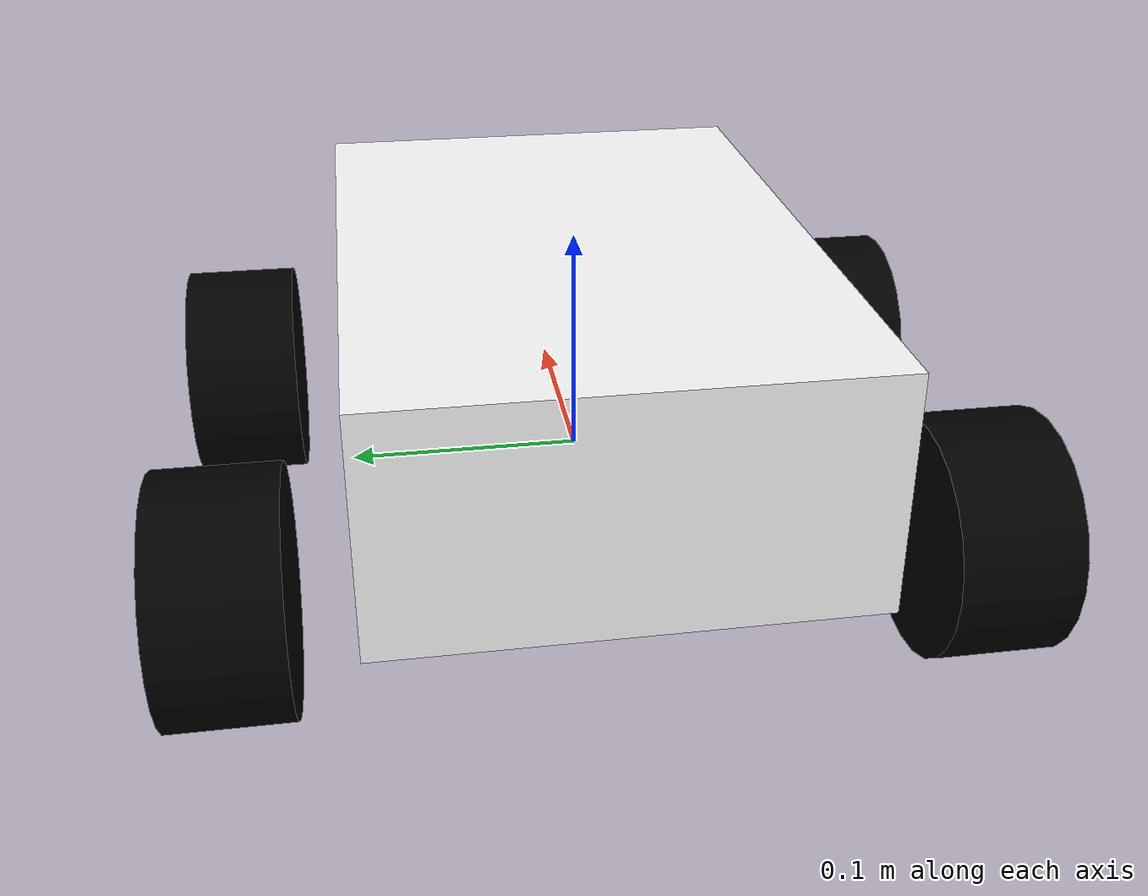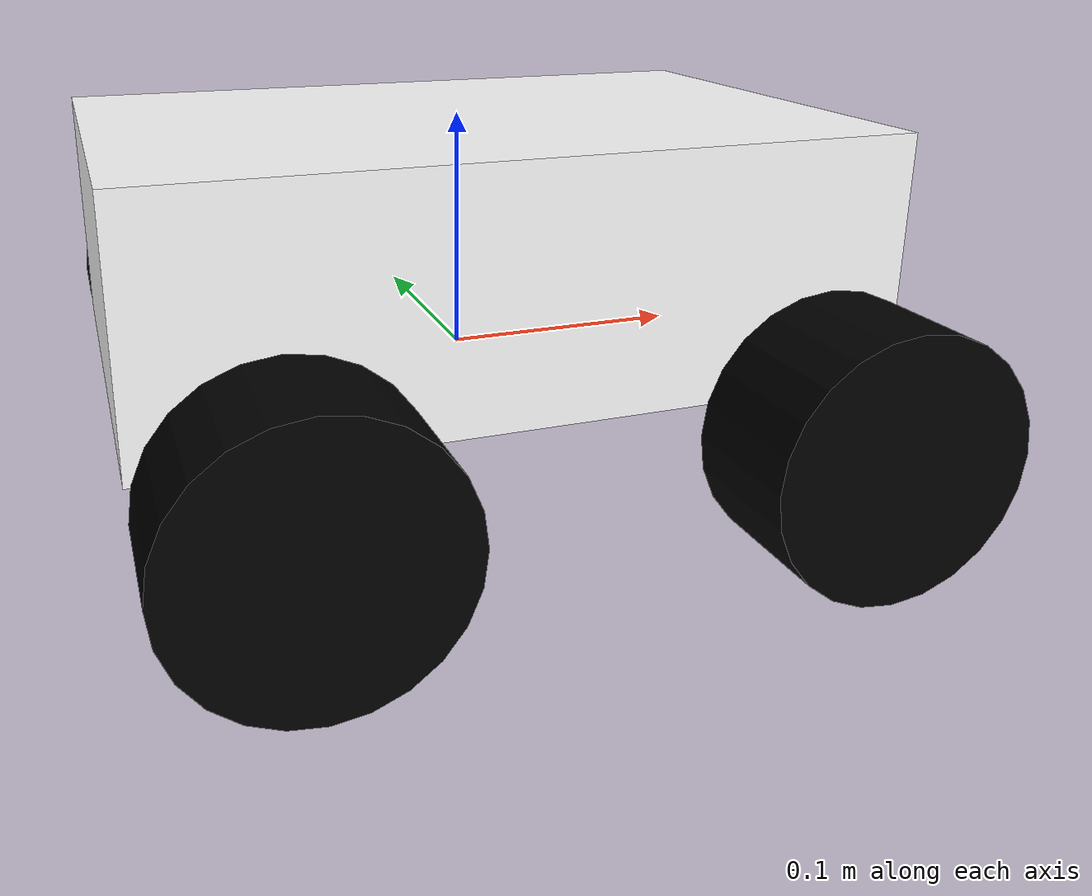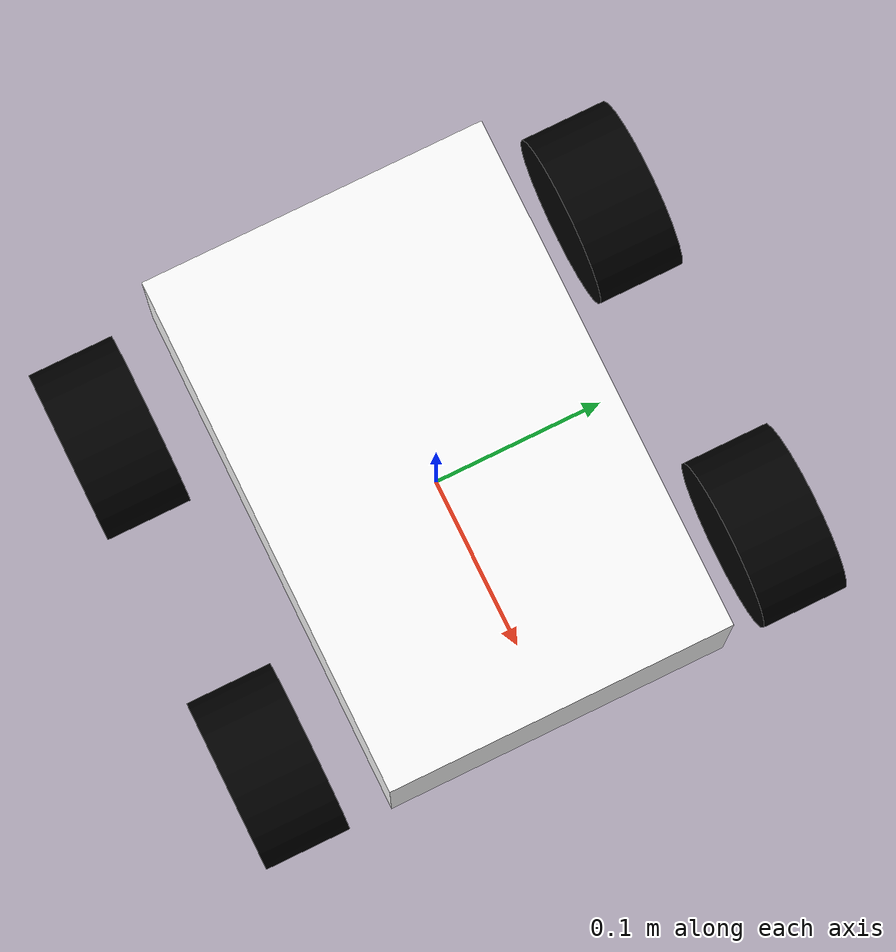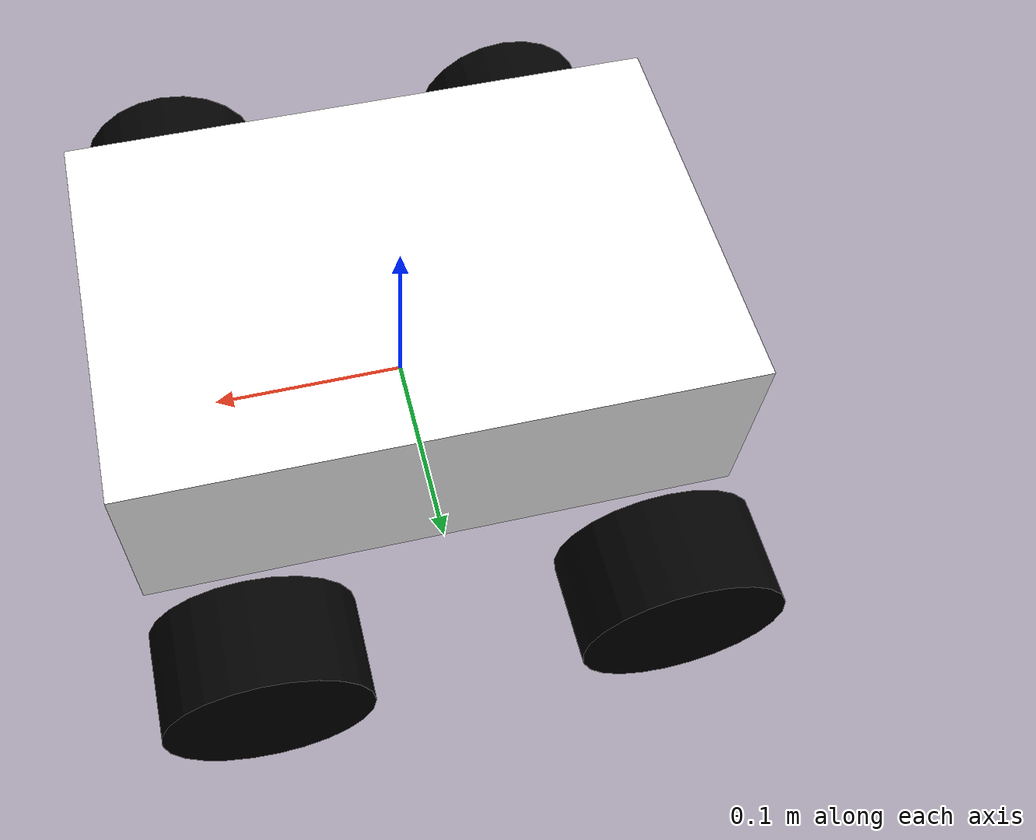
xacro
<?xml version="1.0"?>

<robot xmlns:xacro="http://www.ros.org/wiki/xacro"
    xmlns:sensor="http://playerstage.sourceforge.net/gazebo/xmlschema/#sensor"
    xmlns:controller="http://playerstage.sourceforge.net/gazebo/xmlschema/#controller"
    xmlns:interface="http://playerstage.sourceforge.net/gazebo/xmlschema/#interface"
    name="robot1_xacro">

    <xacro:property name="length_wheel" value="0.05" />             <!--长度 -->
    <xacro:property name="radius_wheel" value="0.05" />             <!--半径-->
    <xacro:macro name="default_inertial" params="mass">
               <inertial>
                       <mass value="${mass}" />
                       <inertia ixx="1.0" ixy="0.0" ixz="0.0"
                                iyy="1.0" iyz="0.0"
                                izz="1.0" />
               </inertial>
    </xacro:macro>

    <link name="base_footprint">
        <visual>
            <geometry>
                    <box size="0.001 0.001 0.001"/>
                </geometry>
            <origin rpy="0 0 0" xyz="0 0 0"/>
        </visual>
        <xacro:default_inertial mass="0.0001"/>
    </link>
    <joint name="base_footprint_joint" type="fixed">
        <origin xyz="0 0 0" />
        <parent link="base_footprint" />
        <child link="base_link" />
    </joint>

    <link name="base_link">
        <visual>
            <geometry>
                    <box size="0.2 .3 .1"/>
                </geometry>
            <origin rpy="0 0 1.57075" xyz="0 0 0.05"/>
            <material name="white">
                <color rgba="1 1 1 1"/>
            </material>
        </visual>
        <collision>
            <geometry>
                    <box size="0.2 .3 0.1"/>
            </geometry>
        </collision>
        <xacro:default_inertial mass="10"/>
    </link>

    <link name="left_front_wheel">
        <visual>
                <geometry>
                    <cylinder length="${length_wheel}" radius="${radius_wheel}"/>
                </geometry>
            <origin rpy="0 0 0" xyz="0 0 0"/>
            <material name="black">
                <color rgba="0 0 0 1"/>
            </material>
        </visual>
        <collision>
            <geometry>
                    <cylinder length="${length_wheel}" radius="${radius_wheel}"/>
            </geometry>
        </collision>
        <xacro:default_inertial mass="1"/>
    </link>

    <link name="left_back_wheel">
        <visual>
                <geometry>
                    <cylinder length="${length_wheel}" radius="${radius_wheel}"/>
                </geometry>
            <origin rpy="0 0 0" xyz="0 0 0"/>
            <material name="black"/>
        </visual>
        <collision>
            <geometry>
                    <cylinder length="${length_wheel}" radius="${radius_wheel}"/>
            </geometry>
        </collision>
        <xacro:default_inertial mass="1"/>
    </link>

    <link name="right_front_wheel">
        <visual>
                <geometry>
                    <cylinder length="${length_wheel}" radius="${radius_wheel}"/>
                </geometry>

            <origin rpy="0 0 0" xyz="0 0 0"/>
            <material name="black"/>
        </visual>
        <collision>
            <geometry>
                    <cylinder length="${length_wheel}" radius="${radius_wheel}"/>
            </geometry>
        </collision>
        <xacro:default_inertial mass="1"/>
    </link>

    <link name="right_back_wheel">
        <visual>
                <geometry>
                    <cylinder length="${length_wheel}" radius="${radius_wheel}"/>
                </geometry>
            <origin rpy="0 0 0" xyz="0 0 0" />
            <material name="black"/>
        </visual>
        <collision>
            <geometry>
                    <cylinder length="${length_wheel}" radius="${radius_wheel}"/>
            </geometry>
        </collision>
        <xacro:default_inertial mass="1"/>
    </link>

     <joint name="base_to_left_front_wheel" type="continuous">
       <parent link="base_link"/>
       <child link="left_front_wheel"/>
       <origin rpy="1.5707 0 0" xyz="0.1 0.15 0"/>
       <axis xyz="0 0 1" />
     </joint>

     <joint name="base_to_left_back_wheel" type="continuous">
       <axis xyz="0 0 1" />
       <anchor xyz="0 0 0" />
       <limit effort="100" velocity="100" />
       <parent link="base_link"/>
       <child link="left_back_wheel"/>
       <origin rpy="1.5707 0 0" xyz="-0.1 0.15 0"/>
     </joint>

     <joint name="base_to_right_front_wheel" type="continuous">
       <parent link="base_link"/>
       <axis xyz="0 0 1" />
       <child link="right_front_wheel"/>
       <origin rpy="1.5707 0 0" xyz="0.1 -0.15 0"/>
     </joint>

     <joint name="base_to_right_back_wheel" type="continuous">
       <parent link="base_link"/>
       <axis xyz="0 0 1" />
       <child link="right_back_wheel"/>
       <origin rpy="1.5707 0 0" xyz="-0.1 -0.15 0"/>
     </joint>
     <gazebo>
        <plugin name="skid_steer_drive_controller" filename="libgazebo_ros_skid_steer_drive.so">
            <updateRate>50.0</updateRate>
            <robotNamespace></robotNamespace>
            <leftFrontJoint>base_to_left_front_wheel</leftFrontJoint>
            <leftRearJoint>base_to_left_back_wheel</leftRearJoint>
            <rightFrontJoint>base_to_right_front_wheel</rightFrontJoint>
            <rightRearJoint>base_to_right_back_wheel</rightRearJoint>
            <wheelSeparation>4</wheelSeparation>
            <wheelDiameter>0.1</wheelDiameter>
            <commandTopic>cmd_vel</commandTopic>
            <odometryTopic>odom</odometryTopic>
            <robotBaseFrame>base_footprint</robotBaseFrame>
            <odometryFrame>odom</odometryFrame>
            <torque>1</torque>
            <topicName>cmd_vel</topicName>
            <broadcastTF>1</broadcastTF>
        </plugin>
    </gazebo>

    <gazebo>
        <plugin name="gazebo_ros_control" filename="libgazebo_ros_control.so">
            <robotNamespace>/robot</robotNamespace>
            <legacyModeNS>true</legacyModeNS>
        </plugin>
    </gazebo>
</robot>
